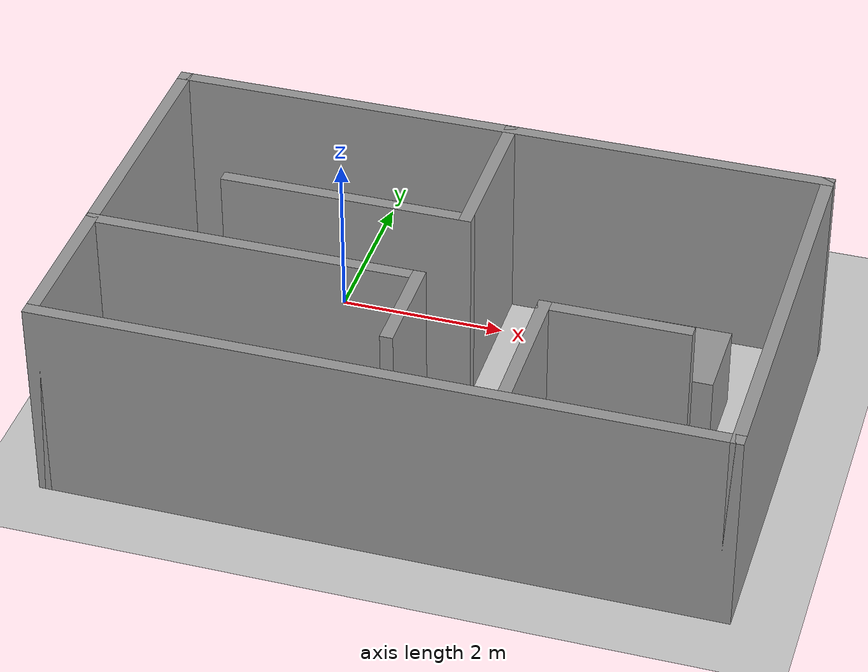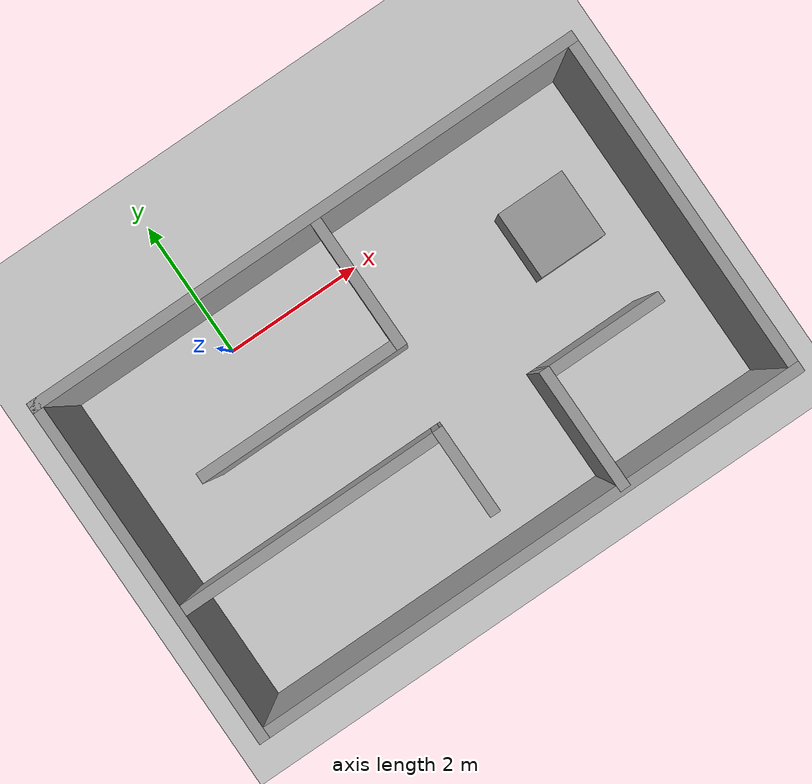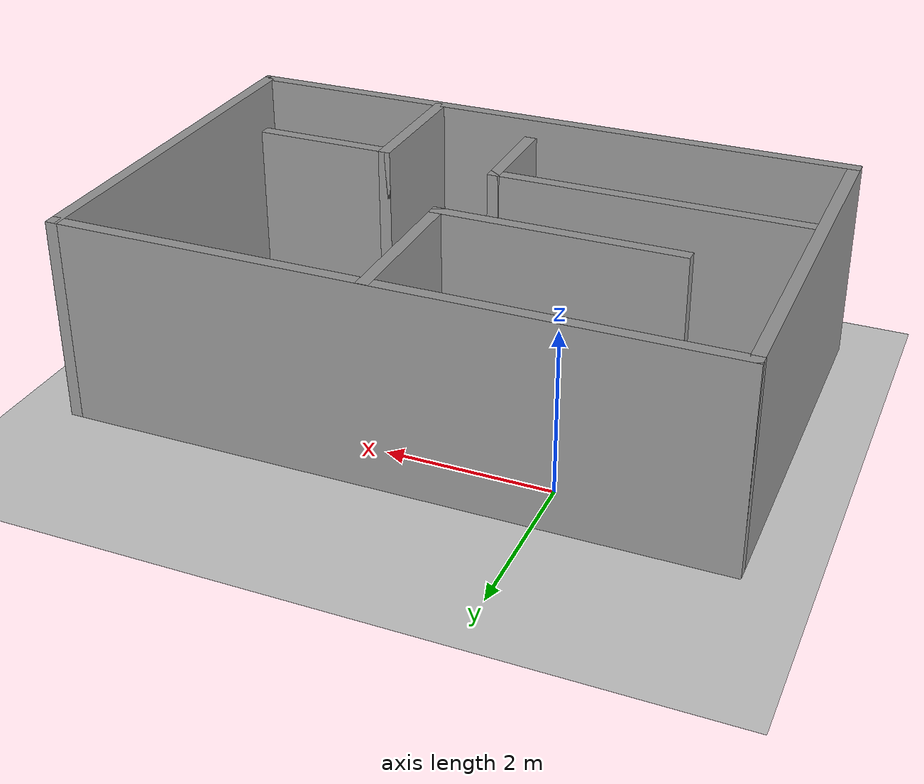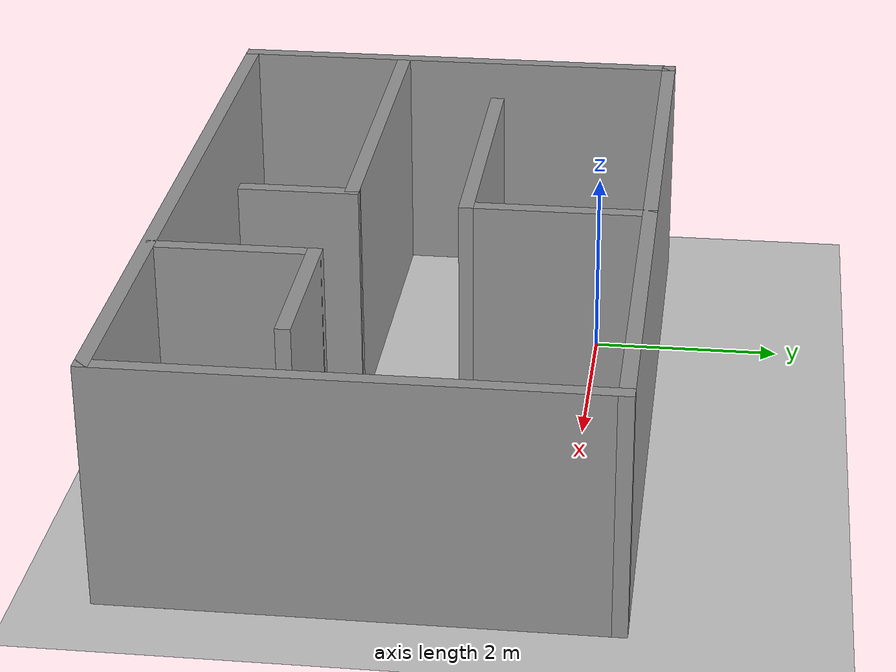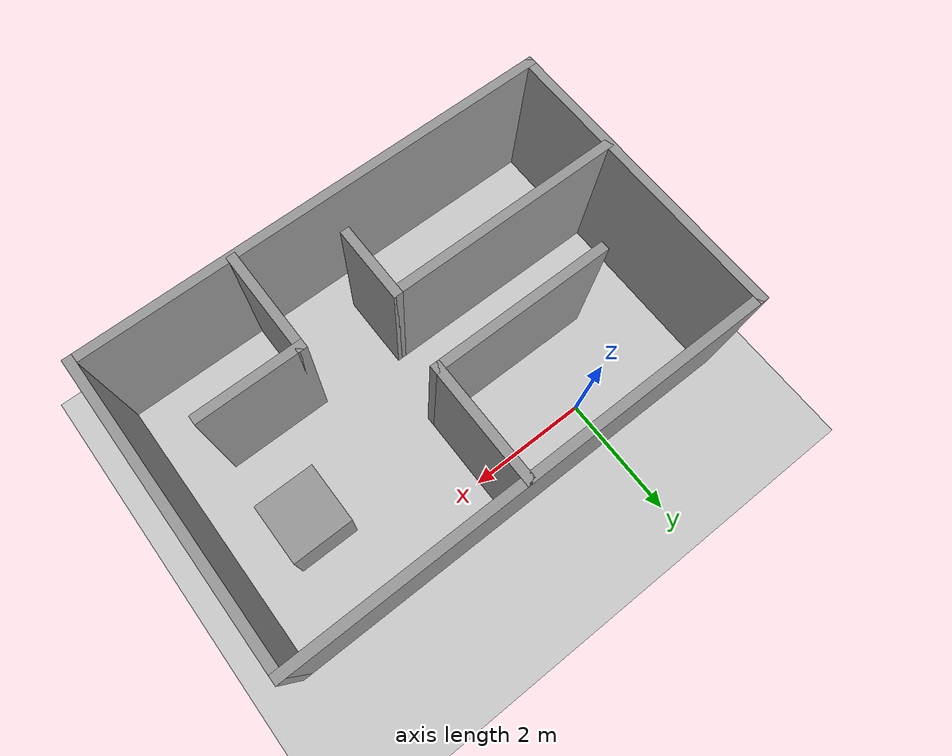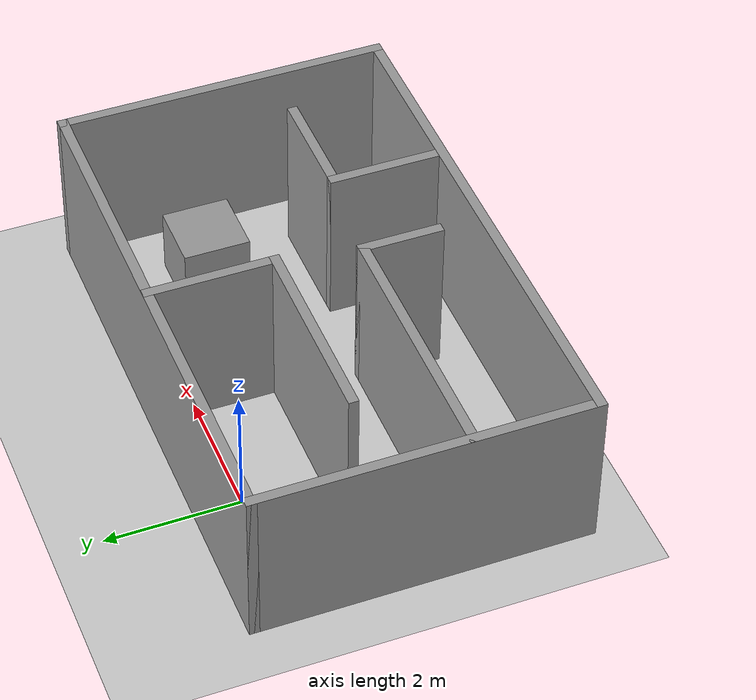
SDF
<sdf version="1.7">
 <world name="default">
  <light name="sun" type="directional">
   <pose>0 0 10 0 -0 0</pose>
   <diffuse>0.8 0.8 0.8 1</diffuse>
   <specular>0.2 0.2 0.2 1</specular>
   <attenuation>
    <range>1000</range>
    <constant>0.9</constant>
    <linear>0.01</linear>
    <quadratic>0.001</quadratic>
   </attenuation>
   <direction>-0.5 0.1 -0.9</direction>
   <spot><inner_angle>0</inner_angle><outer_angle>0</outer_angle><falloff>0</falloff></spot>
  </light>
  <model name="ground_plane">
   <static>1</static>
   <link name="link">
    <collision name="collision">
     <geometry><plane><normal>0 0 1</normal><size>100 100</size></plane></geometry>
     <surface><friction><ode><mu>100</mu><mu2>50</mu2></ode></friction></surface>
    </collision>
    <visual name="visual">
     <cast_shadows>0</cast_shadows>
     <geometry><plane><normal>0 0 1</normal><size>100 100</size></plane></geometry>
     <material>
      <script><uri>file://media/materials/scripts/gazebo.material</uri><name>Gazebo/Grey</name></script>
     </material>
    </visual>
   </link>
  </model>
  <gravity>0 0 -9.8</gravity>
  <magnetic_field>6e-06 2.3e-05 -4.2e-05</magnetic_field>
  <atmosphere type="adiabatic"/>
  <physics type="ode">
   <max_step_size>0.001</max_step_size>
   <real_time_factor>1</real_time_factor>
   <real_time_update_rate>1000</real_time_update_rate>
  </physics>
  <scene><ambient>0.4 0.4 0.4 1</ambient><background>0.7 0.7 0.7 1</background><shadows>1</shadows></scene>
  <audio><device>default</device></audio>
  <spherical_coordinates>
   <surface_model>EARTH_WGS84</surface_model>
   <latitude_deg>0</latitude_deg>
   <longitude_deg>0</longitude_deg>
   <elevation>0</elevation>
   <heading_deg>0</heading_deg>
  </spherical_coordinates>
  <model name="room">
   <pose>1.75722 -0.859138 0 0 -0 0</pose>
   <link name="Wall_0">
    <collision name="Wall_0_Collision">
     <geometry><box><size>8 0.15 2.5</size></box></geometry>
     <pose>0 0 1.25 0 -0 0</pose>
    </collision>
    <visual name="Wall_0_Visual">
     <pose>0 0 1.25 0 -0 0</pose>
     <geometry><box><size>8 0.15 2.5</size></box></geometry>
     <material>
      <script><uri>file://media/materials/scripts/gazebo.material</uri><name>Gazebo/Grey</name></script>
      <ambient>1 1 1 1</ambient>
     </material>
     <meta><layer>0</layer></meta>
    </visual>
    <pose>-0 1.4875 0 0 -0 3.14159</pose>
   </link>
   <link name="Wall_1">
    <collision name="Wall_1_Collision">
     <geometry><box><size>0.15 0.15 2.5</size></box></geometry>
     <pose>0 0 1.25 0 -0 0</pose>
    </collision>
    <visual name="Wall_1_Visual">
     <pose>0 0 1.25 0 -0 0</pose>
     <geometry><box><size>0.15 0.15 2.5</size></box></geometry>
     <material>
      <script><uri>file://media/materials/scripts/gazebo.material</uri><name>Gazebo/Grey</name></script>
      <ambient>1 1 1 1</ambient>
     </material>
     <meta><layer>0</layer></meta>
    </visual>
    <pose>-3.925 1.4875 0 0 -0 0</pose>
   </link>
   <link name="Wall_10">
    <collision name="Wall_10_Collision">
     <geometry><box><size>1.25 0.15 2.5</size></box></geometry>
     <pose>0 0 1.25 0 -0 0</pose>
    </collision>
    <visual name="Wall_10_Visual">
     <pose>0 0 1.25 0 -0 0</pose>
     <geometry><box><size>1.25 0.15 2.5</size></box></geometry>
     <material>
      <script><uri>file://media/materials/scripts/gazebo.material</uri><name>Gazebo/Grey</name></script>
      <ambient>1 1 1 1</ambient>
     </material>
     <meta><layer>0</layer></meta>
    </visual>
    <pose>-0.06919 -2.12542 0 0 -0 -1.5708</pose>
   </link>
   <link name="Wall_12">
    <collision name="Wall_12_Collision">
     <geometry><box><size>1.75 0.15 2.5</size></box></geometry>
     <pose>0 0 1.25 0 -0 0</pose>
    </collision>
    <visual name="Wall_12_Visual">
     <pose>0 0 1.25 0 -0 0</pose>
     <geometry><box><size>1.75 0.15 2.5</size></box></geometry>
     <material>
      <script><uri>file://media/materials/scripts/gazebo.material</uri><name>Gazebo/Grey</name></script>
      <ambient>1 1 1 1</ambient>
     </material>
     <meta><layer>0</layer></meta>
    </visual>
    <pose>1.40387 -2.50922 0 0 -0 1.5708</pose>
   </link>
   <link name="Wall_13">
    <collision name="Wall_13_Collision">
     <geometry><box><size>1.75 0.15 2.5</size></box></geometry>
     <pose>0 0 1.25 0 -0 0</pose>
    </collision>
    <visual name="Wall_13_Visual">
     <pose>0 0 1.25 0 -0 0</pose>
     <geometry><box><size>1.75 0.15 2.5</size></box></geometry>
     <material>
      <script><uri>file://media/materials/scripts/gazebo.material</uri><name>Gazebo/Grey</name></script>
      <ambient>1 1 1 1</ambient>
     </material>
     <meta><layer>0</layer></meta>
    </visual>
    <pose>2.20387 -1.70922 0 0 -0 0</pose>
   </link>
   <link name="Wall_2">
    <collision name="Wall_2_Collision">
     <geometry><box><size>5 0.15 2.5</size></box></geometry>
     <pose>0 0 1.25 0 -0 0</pose>
    </collision>
    <visual name="Wall_2_Visual">
     <pose>0 0 1.25 0 -0 0</pose>
     <geometry><box><size>5 0.15 2.5</size></box></geometry>
     <material>
      <script><uri>file://media/materials/scripts/gazebo.material</uri><name>Gazebo/Grey</name></script>
      <ambient>1 1 1 1</ambient>
     </material>
     <meta><layer>0</layer></meta>
    </visual>
    <pose>-3.925 -0.9375 0 0 -0 -1.5708</pose>
   </link>
   <link name="Wall_3">
    <collision name="Wall_3_Collision">
     <geometry><box><size>8 0.15 2.5</size></box></geometry>
     <pose>0 0 1.25 0 -0 0</pose>
    </collision>
    <visual name="Wall_3_Visual">
     <pose>0 0 1.25 0 -0 0</pose>
     <geometry><box><size>8 0.15 2.5</size></box></geometry>
     <material>
      <script><uri>file://media/materials/scripts/gazebo.material</uri><name>Gazebo/Grey</name></script>
      <ambient>1 1 1 1</ambient>
     </material>
     <meta><layer>0</layer></meta>
    </visual>
    <pose>-0 -3.3625 0 0 -0 0</pose>
   </link>
   <link name="Wall_4">
    <collision name="Wall_4_Collision">
     <geometry><box><size>5 0.15 2.5</size></box></geometry>
     <pose>0 0 1.25 0 -0 0</pose>
    </collision>
    <visual name="Wall_4_Visual">
     <pose>0 0 1.25 0 -0 0</pose>
     <geometry><box><size>5 0.15 2.5</size></box></geometry>
     <material>
      <script><uri>file://media/materials/scripts/gazebo.material</uri><name>Gazebo/Grey</name></script>
      <ambient>1 1 1 1</ambient>
     </material>
     <meta><layer>0</layer></meta>
    </visual>
    <pose>3.925 -0.9375 0 0 -0 1.5708</pose>
   </link>
   <link name="Wall_6">
    <collision name="Wall_6_Collision">
     <geometry><box><size>2 0.15 2.5</size></box></geometry>
     <pose>0 0 1.25 0 -0 0</pose>
    </collision>
    <visual name="Wall_6_Visual">
     <pose>0 0 1.25 0 -0 0</pose>
     <geometry><box><size>2 0.15 2.5</size></box></geometry>
     <material>
      <script><uri>file://media/materials/scripts/gazebo.material</uri><name>Gazebo/Grey</name></script>
      <ambient>1 1 1 1</ambient>
     </material>
     <meta><layer>0</layer></meta>
    </visual>
    <pose>0.141546 0.556537 0 0 -0 -1.5708</pose>
   </link>
   <link name="Wall_7">
    <collision name="Wall_7_Collision">
     <geometry><box><size>3 0.15 2.5</size></box></geometry>
     <pose>0 0 1.25 0 -0 0</pose>
    </collision>
    <visual name="Wall_7_Visual">
     <pose>0 0 1.25 0 -0 0</pose>
     <geometry><box><size>3 0.15 2.5</size></box></geometry>
     <material>
      <script><uri>file://media/materials/scripts/gazebo.material</uri><name>Gazebo/Grey</name></script>
      <ambient>1 1 1 1</ambient>
     </material>
     <meta><layer>0</layer></meta>
    </visual>
    <pose>-1.28345 -0.368463 0 0 -0 3.14159</pose>
   </link>
   <link name="Wall_9">
    <collision name="Wall_9_Collision">
     <geometry><box><size>4 0.15 2.5</size></box></geometry>
     <pose>0 0 1.25 0 -0 0</pose>
    </collision>
    <visual name="Wall_9_Visual">
     <pose>0 0 1.25 0 -0 0</pose>
     <geometry><box><size>4 0.15 2.5</size></box></geometry>
     <material>
      <script><uri>file://media/materials/scripts/gazebo.material</uri><name>Gazebo/Grey</name></script>
      <ambient>1 1 1 1</ambient>
     </material>
     <meta><layer>0</layer></meta>
    </visual>
    <pose>-1.99419 -1.57542 0 0 -0 0</pose>
   </link>
   <static>1</static>
  </model>
  <model name="unit_box">
   <pose>4.40005 -1.0519 0.5 0 -0 0</pose>
   <link name="link">
    <inertial>
     <mass>1</mass>
     <inertia>
      <ixx>0.166667</ixx>
      <ixy>0</ixy>
      <ixz>0</ixz>
      <iyy>0.166667</iyy>
      <iyz>0</iyz>
      <izz>0.166667</izz>
     </inertia>
    </inertial>
    <collision name="collision"><geometry><box><size>1 1 1</size></box></geometry></collision>
    <visual name="visual">
     <geometry><box><size>1 1 1</size></box></geometry>
     <material>
      <script><name>Gazebo/Grey</name><uri>file://media/materials/scripts/gazebo.material</uri></script>
     </material>
    </visual>
   </link>
  </model>
 </world>
</sdf>
